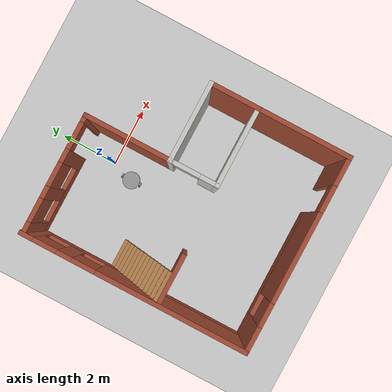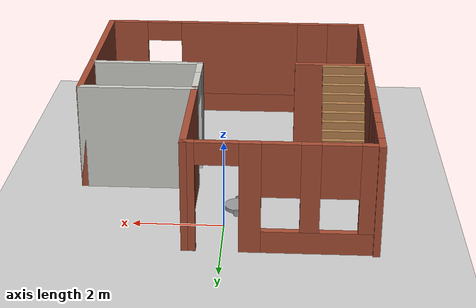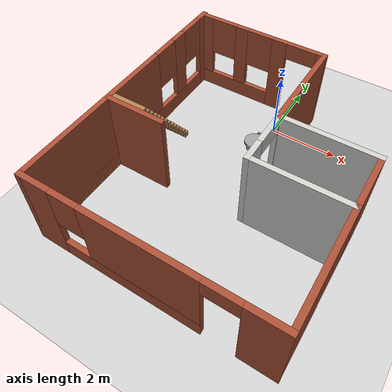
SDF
<sdf version="1.6">
 <world name="default">
  <model name="ground_plane">
   <static>1</static>
   <link name="link">
    <collision name="collision">
     <geometry><plane><normal>0 0 1</normal><size>100 100</size></plane></geometry>
     <surface><friction><ode><mu>100</mu><mu2>50</mu2></ode></friction></surface>
    </collision>
    <visual name="visual">
     <cast_shadows>0</cast_shadows>
     <geometry><plane><normal>0 0 1</normal><size>100 100</size></plane></geometry>
     <material>
      <script><uri>file://media/materials/scripts/gazebo.material</uri><name>Gazebo/Grey</name></script>
     </material>
    </visual>
   </link>
  </model>
  <model name="building">
   <pose>0.06678 -2.71531 0 0 -0 0</pose>
   <link name="Stairs_1">
    <visual name="Stairs_1_Visual_0">
     <pose>-2.71671 1.09233 0.089286 0 -0 0</pose>
     <geometry><box><size>1 0.135786 0.178571</size></box></geometry>
     <material>
      <script><uri>file://media/materials/scripts/gazebo.material</uri><name>Gazebo/Wood</name></script>
      <ambient>1 1 1 1</ambient>
     </material>
     <meta><layer>0</layer></meta>
    </visual>
    <collision name="Stairs_1_Collision_0">
     <geometry><box><size>1 0.135786 0.178571</size></box></geometry>
     <pose>-2.71671 1.09233 0.089286 0 -0 0</pose>
    </collision>
    <visual name="Stairs_1_Visual_1">
     <pose>-2.71671 0.956549 0.267857 0 -0 0</pose>
     <geometry><box><size>1 0.135786 0.178571</size></box></geometry>
     <material>
      <script><uri>file://media/materials/scripts/gazebo.material</uri><name>Gazebo/Wood</name></script>
      <ambient>1 1 1 1</ambient>
     </material>
     <meta><layer>0</layer></meta>
    </visual>
    <collision name="Stairs_1_Collision_1">
     <geometry><box><size>1 0.135786 0.178571</size></box></geometry>
     <pose>-2.71671 0.956549 0.267857 0 -0 0</pose>
    </collision>
    <visual name="Stairs_1_Visual_2">
     <pose>-2.71671 0.820763 0.446429 0 -0 0</pose>
     <geometry><box><size>1 0.135786 0.178571</size></box></geometry>
     <material>
      <script><uri>file://media/materials/scripts/gazebo.material</uri><name>Gazebo/Wood</name></script>
      <ambient>1 1 1 1</ambient>
     </material>
     <meta><layer>0</layer></meta>
    </visual>
    <collision name="Stairs_1_Collision_2">
     <geometry><box><size>1 0.135786 0.178571</size></box></geometry>
     <pose>-2.71671 0.820763 0.446429 0 -0 0</pose>
    </collision>
    <visual name="Stairs_1_Visual_3">
     <pose>-2.71671 0.684977 0.625 0 -0 0</pose>
     <geometry><box><size>1 0.135786 0.178571</size></box></geometry>
     <material>
      <script><uri>file://media/materials/scripts/gazebo.material</uri><name>Gazebo/Wood</name></script>
      <ambient>1 1 1 1</ambient>
     </material>
     <meta><layer>0</layer></meta>
    </visual>
    <collision name="Stairs_1_Collision_3">
     <geometry><box><size>1 0.135786 0.178571</size></box></geometry>
     <pose>-2.71671 0.684977 0.625 0 -0 0</pose>
    </collision>
    <visual name="Stairs_1_Visual_4">
     <pose>-2.71671 0.549191 0.803571 0 -0 0</pose>
     <geometry><box><size>1 0.135786 0.178571</size></box></geometry>
     <material>
      <script><uri>file://media/materials/scripts/gazebo.material</uri><name>Gazebo/Wood</name></script>
      <ambient>1 1 1 1</ambient>
     </material>
     <meta><layer>0</layer></meta>
    </visual>
    <collision name="Stairs_1_Collision_4">
     <geometry><box><size>1 0.135786 0.178571</size></box></geometry>
     <pose>-2.71671 0.549191 0.803571 0 -0 0</pose>
    </collision>
    <visual name="Stairs_1_Visual_5">
     <pose>-2.71671 0.413406 0.982143 0 -0 0</pose>
     <geometry><box><size>1 0.135786 0.178571</size></box></geometry>
     <material>
      <script><uri>file://media/materials/scripts/gazebo.material</uri><name>Gazebo/Wood</name></script>
      <ambient>1 1 1 1</ambient>
     </material>
     <meta><layer>0</layer></meta>
    </visual>
    <collision name="Stairs_1_Collision_5">
     <geometry><box><size>1 0.135786 0.178571</size></box></geometry>
     <pose>-2.71671 0.413406 0.982143 0 -0 0</pose>
    </collision>
    <visual name="Stairs_1_Visual_6">
     <pose>-2.71671 0.27762 1.16071 0 -0 0</pose>
     <geometry><box><size>1 0.135786 0.178571</size></box></geometry>
     <material>
      <script><uri>file://media/materials/scripts/gazebo.material</uri><name>Gazebo/Wood</name></script>
      <ambient>1 1 1 1</ambient>
     </material>
     <meta><layer>0</layer></meta>
    </visual>
    <collision name="Stairs_1_Collision_6">
     <geometry><box><size>1 0.135786 0.178571</size></box></geometry>
     <pose>-2.71671 0.27762 1.16071 0 -0 0</pose>
    </collision>
    <visual name="Stairs_1_Visual_7">
     <pose>-2.71671 0.141834 1.33929 0 -0 0</pose>
     <geometry><box><size>1 0.135786 0.178571</size></box></geometry>
     <material>
      <script><uri>file://media/materials/scripts/gazebo.material</uri><name>Gazebo/Wood</name></script>
      <ambient>1 1 1 1</ambient>
     </material>
     <meta><layer>0</layer></meta>
    </visual>
    <collision name="Stairs_1_Collision_7">
     <geometry><box><size>1 0.135786 0.178571</size></box></geometry>
     <pose>-2.71671 0.141834 1.33929 0 -0 0</pose>
    </collision>
    <visual name="Stairs_1_Visual_8">
     <pose>-2.71671 0.006049 1.51786 0 -0 0</pose>
     <geometry><box><size>1 0.135786 0.178571</size></box></geometry>
     <material>
      <script><uri>file://media/materials/scripts/gazebo.material</uri><name>Gazebo/Wood</name></script>
      <ambient>1 1 1 1</ambient>
     </material>
     <meta><layer>0</layer></meta>
    </visual>
    <collision name="Stairs_1_Collision_8">
     <geometry><box><size>1 0.135786 0.178571</size></box></geometry>
     <pose>-2.71671 0.006049 1.51786 0 -0 0</pose>
    </collision>
    <visual name="Stairs_1_Visual_9">
     <pose>-2.71671 -0.129737 1.69643 0 -0 0</pose>
     <geometry><box><size>1 0.135786 0.178571</size></box></geometry>
     <material>
      <script><uri>file://media/materials/scripts/gazebo.material</uri><name>Gazebo/Wood</name></script>
      <ambient>1 1 1 1</ambient>
     </material>
     <meta><layer>0</layer></meta>
    </visual>
    <collision name="Stairs_1_Collision_9">
     <geometry><box><size>1 0.135786 0.178571</size></box></geometry>
     <pose>-2.71671 -0.129737 1.69643 0 -0 0</pose>
    </collision>
    <visual name="Stairs_1_Visual_10">
     <pose>-2.71671 -0.265523 1.875 0 -0 0</pose>
     <geometry><box><size>1 0.135786 0.178571</size></box></geometry>
     <material>
      <script><uri>file://media/materials/scripts/gazebo.material</uri><name>Gazebo/Wood</name></script>
      <ambient>1 1 1 1</ambient>
     </material>
     <meta><layer>0</layer></meta>
    </visual>
    <collision name="Stairs_1_Collision_10">
     <geometry><box><size>1 0.135786 0.178571</size></box></geometry>
     <pose>-2.71671 -0.265523 1.875 0 -0 0</pose>
    </collision>
    <visual name="Stairs_1_Visual_11">
     <pose>-2.71671 -0.401308 2.05357 0 -0 0</pose>
     <geometry><box><size>1 0.135786 0.178571</size></box></geometry>
     <material>
      <script><uri>file://media/materials/scripts/gazebo.material</uri><name>Gazebo/Wood</name></script>
      <ambient>1 1 1 1</ambient>
     </material>
     <meta><layer>0</layer></meta>
    </visual>
    <collision name="Stairs_1_Collision_11">
     <geometry><box><size>1 0.135786 0.178571</size></box></geometry>
     <pose>-2.71671 -0.401308 2.05357 0 -0 0</pose>
    </collision>
    <visual name="Stairs_1_Visual_12">
     <pose>-2.71671 -0.537094 2.23214 0 -0 0</pose>
     <geometry><box><size>1 0.135786 0.178571</size></box></geometry>
     <material>
      <script><uri>file://media/materials/scripts/gazebo.material</uri><name>Gazebo/Wood</name></script>
      <ambient>1 1 1 1</ambient>
     </material>
     <meta><layer>0</layer></meta>
    </visual>
    <collision name="Stairs_1_Collision_12">
     <geometry><box><size>1 0.135786 0.178571</size></box></geometry>
     <pose>-2.71671 -0.537094 2.23214 0 -0 0</pose>
    </collision>
    <visual name="Stairs_1_Visual_13">
     <pose>-2.71671 -0.67288 2.41071 0 -0 0</pose>
     <geometry><box><size>1 0.135786 0.178571</size></box></geometry>
     <material>
      <script><uri>file://media/materials/scripts/gazebo.material</uri><name>Gazebo/Wood</name></script>
      <ambient>1 1 1 1</ambient>
     </material>
     <meta><layer>0</layer></meta>
    </visual>
    <collision name="Stairs_1_Collision_13">
     <geometry><box><size>1 0.135786 0.178571</size></box></geometry>
     <pose>-2.71671 -0.67288 2.41071 0 -0 0</pose>
    </collision>
   </link>
   <link name="Wall_0">
    <pose>-3.3 0 0 0 0 -1.5708</pose>
    <visual name="Wall_0_Visual_0">
     <pose>-3.64528 0 1.25 0 -0 0</pose>
     <geometry><box><size>0.459429 0.15 2.5</size></box></geometry>
     <material>
      <script><uri>file://media/materials/scripts/gazebo.material</uri><name>Gazebo/Bricks</name></script>
      <ambient>1 1 1 1</ambient>
     </material>
     <meta><layer>0</layer></meta>
    </visual>
    <collision name="Wall_0_Collision_0">
     <geometry><box><size>0.459429 0.15 2.5</size></box></geometry>
     <pose>-3.64528 0 1.25 0 -0 0</pose>
    </collision>
    <visual name="Wall_0_Visual_1">
     <pose>0.229715 0 0.25 0 -0 0</pose>
     <geometry><box><size>7.29057 0.15 0.5</size></box></geometry>
     <material>
      <script><uri>file://media/materials/scripts/gazebo.material</uri><name>Gazebo/Bricks</name></script>
      <ambient>1 1 1 1</ambient>
     </material>
     <meta><layer>0</layer></meta>
    </visual>
    <collision name="Wall_0_Collision_1">
     <geometry><box><size>7.29057 0.15 0.5</size></box></geometry>
     <pose>0.229715 0 0.25 0 -0 0</pose>
    </collision>
    <visual name="Wall_0_Visual_2">
     <pose>-2.36188 0 1.5 0 -0 0</pose>
     <geometry><box><size>0.507382 0.15 2</size></box></geometry>
     <material>
      <script><uri>file://media/materials/scripts/gazebo.material</uri><name>Gazebo/Bricks</name></script>
      <ambient>1 1 1 1</ambient>
     </material>
     <meta><layer>0</layer></meta>
    </visual>
    <collision name="Wall_0_Collision_2">
     <geometry><box><size>0.507382 0.15 2</size></box></geometry>
     <pose>-2.36188 0 1.5 0 -0 0</pose>
    </collision>
    <visual name="Wall_0_Visual_3">
     <pose>1.28341 0 1.5 0 -0 0</pose>
     <geometry><box><size>5.18319 0.15 2</size></box></geometry>
     <material>
      <script><uri>file://media/materials/scripts/gazebo.material</uri><name>Gazebo/Bricks</name></script>
      <ambient>1 1 1 1</ambient>
     </material>
     <meta><layer>0</layer></meta>
    </visual>
    <collision name="Wall_0_Collision_3">
     <geometry><box><size>5.18319 0.15 2</size></box></geometry>
     <pose>1.28341 0 1.5 0 -0 0</pose>
    </collision>
    <visual name="Wall_0_Visual_4">
     <pose>-3.01557 0 1.9 0 -0 0</pose>
     <geometry><box><size>0.8 0.15 1.2</size></box></geometry>
     <material>
      <script><uri>file://media/materials/scripts/gazebo.material</uri><name>Gazebo/Bricks</name></script>
      <ambient>1 1 1 1</ambient>
     </material>
     <meta><layer>0</layer></meta>
    </visual>
    <collision name="Wall_0_Collision_4">
     <geometry><box><size>0.8 0.15 1.2</size></box></geometry>
     <pose>-3.01557 0 1.9 0 -0 0</pose>
    </collision>
    <visual name="Wall_0_Visual_5">
     <pose>-1.70819 0 1.9 0 -0 0</pose>
     <geometry><box><size>0.8 0.15 1.2</size></box></geometry>
     <material>
      <script><uri>file://media/materials/scripts/gazebo.material</uri><name>Gazebo/Bricks</name></script>
      <ambient>1 1 1 1</ambient>
     </material>
     <meta><layer>0</layer></meta>
    </visual>
    <collision name="Wall_0_Collision_5">
     <geometry><box><size>0.8 0.15 1.2</size></box></geometry>
     <pose>-1.70819 0 1.9 0 -0 0</pose>
    </collision>
   </link>
   <link name="Wall_1">
    <pose>0 -3.8 0 0 -0 0</pose>
    <visual name="Wall_1_Visual_0">
     <pose>-2.90392 0 1.25 0 -0 0</pose>
     <geometry><box><size>0.942155 0.15 2.5</size></box></geometry>
     <material>
      <script><uri>file://media/materials/scripts/gazebo.material</uri><name>Gazebo/Bricks</name></script>
      <ambient>1 1 1 1</ambient>
     </material>
     <meta><layer>0</layer></meta>
    </visual>
    <collision name="Wall_1_Collision_0">
     <geometry><box><size>0.942155 0.15 2.5</size></box></geometry>
     <pose>-2.90392 0 1.25 0 -0 0</pose>
    </collision>
    <visual name="Wall_1_Visual_1">
     <pose>2.85715 0 1.25 0 -0 0</pose>
     <geometry><box><size>1.0357 0.15 2.5</size></box></geometry>
     <material>
      <script><uri>file://media/materials/scripts/gazebo.material</uri><name>Gazebo/Bricks</name></script>
      <ambient>1 1 1 1</ambient>
     </material>
     <meta><layer>0</layer></meta>
    </visual>
    <collision name="Wall_1_Collision_1">
     <geometry><box><size>1.0357 0.15 2.5</size></box></geometry>
     <pose>2.85715 0 1.25 0 -0 0</pose>
    </collision>
    <visual name="Wall_1_Visual_2">
     <pose>-0.496772 0 0.25 0 -0 0</pose>
     <geometry><box><size>3.87215 0.15 0.5</size></box></geometry>
     <material>
      <script><uri>file://media/materials/scripts/gazebo.material</uri><name>Gazebo/Bricks</name></script>
      <ambient>1 1 1 1</ambient>
     </material>
     <meta><layer>0</layer></meta>
    </visual>
    <collision name="Wall_1_Collision_2">
     <geometry><box><size>3.87215 0.15 0.5</size></box></geometry>
     <pose>-0.496772 0 0.25 0 -0 0</pose>
    </collision>
    <visual name="Wall_1_Visual_3">
     <pose>-0.096772 0 1.5 0 -0 0</pose>
     <geometry><box><size>3.07215 0.15 2</size></box></geometry>
     <material>
      <script><uri>file://media/materials/scripts/gazebo.material</uri><name>Gazebo/Bricks</name></script>
      <ambient>1 1 1 1</ambient>
     </material>
     <meta><layer>0</layer></meta>
    </visual>
    <collision name="Wall_1_Collision_3">
     <geometry><box><size>3.07215 0.15 2</size></box></geometry>
     <pose>-0.096772 0 1.5 0 -0 0</pose>
    </collision>
    <visual name="Wall_1_Visual_4">
     <pose>-2.03285 0 1.9 0 -0 0</pose>
     <geometry><box><size>0.8 0.15 1.2</size></box></geometry>
     <material>
      <script><uri>file://media/materials/scripts/gazebo.material</uri><name>Gazebo/Bricks</name></script>
      <ambient>1 1 1 1</ambient>
     </material>
     <meta><layer>0</layer></meta>
    </visual>
    <collision name="Wall_1_Collision_4">
     <geometry><box><size>0.8 0.15 1.2</size></box></geometry>
     <pose>-2.03285 0 1.9 0 -0 0</pose>
    </collision>
    <visual name="Wall_1_Visual_5">
     <pose>1.8893 0 2.25 0 -0 0</pose>
     <geometry><box><size>0.9 0.15 0.5</size></box></geometry>
     <material>
      <script><uri>file://media/materials/scripts/gazebo.material</uri><name>Gazebo/Bricks</name></script>
      <ambient>1 1 1 1</ambient>
     </material>
     <meta><layer>0</layer></meta>
    </visual>
    <collision name="Wall_1_Collision_5">
     <geometry><box><size>0.9 0.15 0.5</size></box></geometry>
     <pose>1.8893 0 2.25 0 -0 0</pose>
    </collision>
   </link>
   <link name="Wall_10">
    <collision name="Wall_10_Collision">
     <geometry><box><size>2.75 0.15 2.5</size></box></geometry>
     <pose>0 0 1.25 0 -0 0</pose>
    </collision>
    <visual name="Wall_10_Visual">
     <pose>0 0 1.25 0 -0 0</pose>
     <geometry><box><size>2.75 0.15 2.5</size></box></geometry>
     <material>
      <script><uri>file://media/materials/scripts/gazebo.material</uri><name>Gazebo/CeilingTiled</name></script>
      <ambient>1 1 1 1</ambient>
     </material>
     <meta><layer>0</layer></meta>
    </visual>
    <pose>2 0.9 0 0 -0 0</pose>
   </link>
   <link name="Wall_11">
    <collision name="Wall_11_Collision">
     <geometry><box><size>1.75 0.15 2.5</size></box></geometry>
     <pose>0 0 1.25 0 -0 0</pose>
    </collision>
    <visual name="Wall_11_Visual">
     <pose>0 0 1.25 0 -0 0</pose>
     <geometry><box><size>1.75 0.15 2.5</size></box></geometry>
     <material>
      <script><uri>file://media/materials/scripts/gazebo.material</uri><name>Gazebo/Bricks</name></script>
      <ambient>1 1 1 1</ambient>
     </material>
     <meta><layer>0</layer></meta>
    </visual>
    <pose>3.3 0.1 0 0 0 -1.5708</pose>
   </link>
   <link name="Wall_2">
    <collision name="Wall_2_Collision">
     <geometry><box><size>3.25 0.15 2.5</size></box></geometry>
     <pose>0 0 1.25 0 -0 0</pose>
    </collision>
    <visual name="Wall_2_Visual">
     <pose>0 0 1.25 0 -0 0</pose>
     <geometry><box><size>3.25 0.15 2.5</size></box></geometry>
     <material>
      <script><uri>file://media/materials/scripts/gazebo.material</uri><name>Gazebo/Bricks</name></script>
      <ambient>1 1 1 1</ambient>
     </material>
     <meta><layer>0</layer></meta>
    </visual>
    <pose>3.3 -2.25 0 0 -0 1.5708</pose>
   </link>
   <link name="Wall_3">
    <collision name="Wall_3_Collision">
     <geometry><box><size>2.75 0.15 2.5</size></box></geometry>
     <pose>0 0 1.25 0 -0 0</pose>
    </collision>
    <visual name="Wall_3_Visual">
     <pose>0 0 1.25 0 -0 0</pose>
     <geometry><box><size>2.75 0.15 2.5</size></box></geometry>
     <material>
      <script><uri>file://media/materials/scripts/gazebo.material</uri><name>Gazebo/CeilingTiled</name></script>
      <ambient>1 1 1 1</ambient>
     </material>
     <meta><layer>0</layer></meta>
    </visual>
    <pose>2 -0.7 0 0 -0 3.14159</pose>
   </link>
   <link name="Wall_4">
    <pose>0.7 0.1 0 0 -0 1.5708</pose>
    <visual name="Wall_4_Visual_0">
     <pose>-0.542267 0 1.25 0 -0 0</pose>
     <geometry><box><size>0.665466 0.15 2.5</size></box></geometry>
     <material>
      <script><uri>file://media/materials/scripts/gazebo.material</uri><name>Gazebo/CeilingTiled</name></script>
      <ambient>1 1 1 1</ambient>
     </material>
     <meta><layer>0</layer></meta>
    </visual>
    <collision name="Wall_4_Collision_0">
     <geometry><box><size>0.665466 0.15 2.5</size></box></geometry>
     <pose>-0.542267 0 1.25 0 -0 0</pose>
    </collision>
    <visual name="Wall_4_Visual_1">
     <pose>0.782733 0 1.25 0 -0 0</pose>
     <geometry><box><size>0.184534 0.15 2.5</size></box></geometry>
     <material>
      <script><uri>file://media/materials/scripts/gazebo.material</uri><name>Gazebo/CeilingTiled</name></script>
      <ambient>1 1 1 1</ambient>
     </material>
     <meta><layer>0</layer></meta>
    </visual>
    <collision name="Wall_4_Collision_1">
     <geometry><box><size>0.184534 0.15 2.5</size></box></geometry>
     <pose>0.782733 0 1.25 0 -0 0</pose>
    </collision>
    <visual name="Wall_4_Visual_2">
     <pose>0.240466 0 2.25 0 -0 0</pose>
     <geometry><box><size>0.9 0.15 0.5</size></box></geometry>
     <material>
      <script><uri>file://media/materials/scripts/gazebo.material</uri><name>Gazebo/CeilingTiled</name></script>
      <ambient>1 1 1 1</ambient>
     </material>
     <meta><layer>0</layer></meta>
    </visual>
    <collision name="Wall_4_Collision_2">
     <geometry><box><size>0.9 0.15 0.5</size></box></geometry>
     <pose>0.240466 0 2.25 0 -0 0</pose>
    </collision>
   </link>
   <link name="Wall_5">
    <collision name="Wall_5_Collision">
     <geometry><box><size>3 0.15 2.5</size></box></geometry>
     <pose>0 0 1.25 0 -0 0</pose>
    </collision>
    <visual name="Wall_5_Visual">
     <pose>0 0 1.25 0 -0 0</pose>
     <geometry><box><size>3 0.15 2.5</size></box></geometry>
     <material>
      <script><uri>file://media/materials/scripts/gazebo.material</uri><name>Gazebo/Bricks</name></script>
      <ambient>1 1 1 1</ambient>
     </material>
     <meta><layer>0</layer></meta>
    </visual>
    <pose>0.7 2.325 0 0 -0 1.5708</pose>
   </link>
   <link name="Wall_6">
    <pose>-1.225 3.75 0 0 -0 3.14159</pose>
    <visual name="Wall_6_Visual_0">
     <pose>-1.84687 0 1.25 0 -0 0</pose>
     <geometry><box><size>0.306261 0.15 2.5</size></box></geometry>
     <material>
      <script><uri>file://media/materials/scripts/gazebo.material</uri><name>Gazebo/Bricks</name></script>
      <ambient>1 1 1 1</ambient>
     </material>
     <meta><layer>0</layer></meta>
    </visual>
    <collision name="Wall_6_Collision_0">
     <geometry><box><size>0.306261 0.15 2.5</size></box></geometry>
     <pose>-1.84687 0 1.25 0 -0 0</pose>
    </collision>
    <visual name="Wall_6_Visual_1">
     <pose>-0.565048 0 1.25 0 -0 0</pose>
     <geometry><box><size>0.457382 0.15 2.5</size></box></geometry>
     <material>
      <script><uri>file://media/materials/scripts/gazebo.material</uri><name>Gazebo/Bricks</name></script>
      <ambient>1 1 1 1</ambient>
     </material>
     <meta><layer>0</layer></meta>
    </visual>
    <collision name="Wall_6_Collision_1">
     <geometry><box><size>0.457382 0.15 2.5</size></box></geometry>
     <pose>-0.565048 0 1.25 0 -0 0</pose>
    </collision>
    <visual name="Wall_6_Visual_2">
     <pose>0.831821 0 0.25 0 -0 0</pose>
     <geometry><box><size>2.33636 0.15 0.5</size></box></geometry>
     <material>
      <script><uri>file://media/materials/scripts/gazebo.material</uri><name>Gazebo/Bricks</name></script>
      <ambient>1 1 1 1</ambient>
     </material>
     <meta><layer>0</layer></meta>
    </visual>
    <collision name="Wall_6_Collision_2">
     <geometry><box><size>2.33636 0.15 0.5</size></box></geometry>
     <pose>0.831821 0 0.25 0 -0 0</pose>
    </collision>
    <visual name="Wall_6_Visual_3">
     <pose>0.66705 0 1.5 0 -0 0</pose>
     <geometry><box><size>0.406814 0.15 2</size></box></geometry>
     <material>
      <script><uri>file://media/materials/scripts/gazebo.material</uri><name>Gazebo/Bricks</name></script>
      <ambient>1 1 1 1</ambient>
     </material>
     <meta><layer>0</layer></meta>
    </visual>
    <collision name="Wall_6_Collision_3">
     <geometry><box><size>0.406814 0.15 2</size></box></geometry>
     <pose>0.66705 0 1.5 0 -0 0</pose>
    </collision>
    <visual name="Wall_6_Visual_4">
     <pose>1.83523 0 1.5 0 -0 0</pose>
     <geometry><box><size>0.329543 0.15 2</size></box></geometry>
     <material>
      <script><uri>file://media/materials/scripts/gazebo.material</uri><name>Gazebo/Bricks</name></script>
      <ambient>1 1 1 1</ambient>
     </material>
     <meta><layer>0</layer></meta>
    </visual>
    <collision name="Wall_6_Collision_4">
     <geometry><box><size>0.329543 0.15 2</size></box></geometry>
     <pose>1.83523 0 1.5 0 -0 0</pose>
    </collision>
    <visual name="Wall_6_Visual_5">
     <pose>0.063643 0 1.9 0 -0 0</pose>
     <geometry><box><size>0.8 0.15 1.2</size></box></geometry>
     <material>
      <script><uri>file://media/materials/scripts/gazebo.material</uri><name>Gazebo/Bricks</name></script>
      <ambient>1 1 1 1</ambient>
     </material>
     <meta><layer>0</layer></meta>
    </visual>
    <collision name="Wall_6_Collision_5">
     <geometry><box><size>0.8 0.15 1.2</size></box></geometry>
     <pose>0.063643 0 1.9 0 -0 0</pose>
    </collision>
    <visual name="Wall_6_Visual_6">
     <pose>1.27046 0 1.9 0 -0 0</pose>
     <geometry><box><size>0.8 0.15 1.2</size></box></geometry>
     <material>
      <script><uri>file://media/materials/scripts/gazebo.material</uri><name>Gazebo/Bricks</name></script>
      <ambient>1 1 1 1</ambient>
     </material>
     <meta><layer>0</layer></meta>
    </visual>
    <collision name="Wall_6_Collision_6">
     <geometry><box><size>0.8 0.15 1.2</size></box></geometry>
     <pose>1.27046 0 1.9 0 -0 0</pose>
    </collision>
    <visual name="Wall_6_Visual_7">
     <pose>-1.24374 0 2.25 0 -0 0</pose>
     <geometry><box><size>0.9 0.15 0.5</size></box></geometry>
     <material>
      <script><uri>file://media/materials/scripts/gazebo.material</uri><name>Gazebo/Bricks</name></script>
      <ambient>1 1 1 1</ambient>
     </material>
     <meta><layer>0</layer></meta>
    </visual>
    <collision name="Wall_6_Collision_7">
     <geometry><box><size>0.9 0.15 0.5</size></box></geometry>
     <pose>-1.24374 0 2.25 0 -0 0</pose>
    </collision>
   </link>
   <link name="Wall_8">
    <collision name="Wall_8_Collision">
     <geometry><box><size>1.75 0.15 2.5</size></box></geometry>
     <pose>0 0 1.25 0 -0 0</pose>
    </collision>
    <visual name="Wall_8_Visual">
     <pose>0 0 1.25 0 -0 0</pose>
     <geometry><box><size>1.75 0.15 2.5</size></box></geometry>
     <material>
      <script><uri>file://media/materials/scripts/gazebo.material</uri><name>Gazebo/Bricks</name></script>
      <ambient>1 1 1 1</ambient>
     </material>
     <meta><layer>0</layer></meta>
    </visual>
    <pose>-2.43966 -0.806008 0 0 -0 0</pose>
   </link>
   <static>1</static>
  </model>
  <model name="myrobot_0">
   <link name="link_1">
    <pose>-0.000148 0.002031 0.023 0 -0 0</pose>
    <inertial>
     <mass>1</mass>
     <inertia><ixx>0.145833</ixx><ixy>0</ixy><ixz>0</ixz><iyy>0.145833</iyy><iyz>0</iyz><izz>0.125</izz></inertia>
    </inertial>
    <visual name="visual">
     <geometry><cylinder><radius>0.3</radius><length>0.08</length></cylinder></geometry>
     <material>
      <lighting>1</lighting>
      <script><uri>file://media/materials/scripts/gazebo.material</uri><name>Gazebo/Grey</name></script>
      <shader type="pixel"><normal_map>__default__</normal_map></shader>
      <ambient>0.3 0.3 0.3 1</ambient>
      <diffuse>0.7 0.7 0.7 1</diffuse>
      <specular>0.01 0.01 0.01 1</specular>
      <emissive>0 0 0 1</emissive>
     </material>
    </visual>
    <collision name="collision">
     <geometry><cylinder><radius>0.3</radius><length>0.08</length></cylinder></geometry>
     <surface>
      <friction>
       <ode><mu>1</mu><mu2>1</mu2><fdir1>0 0 0</fdir1><slip1>0</slip1><slip2>0</slip2></ode>
       <torsional>
        <coefficient>1</coefficient>
        <patch_radius>0</patch_radius>
        <surface_radius>0</surface_radius>
        <use_patch_radius>1</use_patch_radius>
        <ode><slip>0</slip></ode>
       </torsional>
      </friction>
      <bounce><restitution_coefficient>0</restitution_coefficient><threshold>1e+06</threshold></bounce>
      <contact>
       <collide_without_contact>0</collide_without_contact>
       <collide_without_contact_bitmask>1</collide_without_contact_bitmask>
       <collide_bitmask>1</collide_bitmask>
       <ode>
        <soft_cfm>0</soft_cfm>
        <soft_erp>0.2</soft_erp>
        <kp>1e+13</kp>
        <kd>1</kd>
        <max_vel>0.01</max_vel>
        <min_depth>0</min_depth>
       </ode>
       <bullet>
        <split_impulse>1</split_impulse>
        <split_impulse_penetration_threshold>-0.01</split_impulse_penetration_threshold>
        <soft_cfm>0</soft_cfm>
        <soft_erp>0.2</soft_erp>
        <kp>1e+13</kp>
        <kd>1</kd>
       </bullet>
      </contact>
     </surface>
    </collision>
   </link>
   <link name="link_2">
    <pose>0.00372 -0.333364 0.023 1.5705 -0 0</pose>
    <inertial>
     <mass>1</mass>
     <inertia><ixx>0.145833</ixx><ixy>0</ixy><ixz>0</ixz><iyy>0.145833</iyy><iyz>0</iyz><izz>0.125</izz></inertia>
    </inertial>
    <visual name="visual">
     <geometry><cylinder><radius>0.08</radius><length>0.05</length></cylinder></geometry>
     <material>
      <lighting>1</lighting>
      <script><uri>file://media/materials/scripts/gazebo.material</uri><name>Gazebo/Grey</name></script>
      <shader type="pixel"><normal_map>__default__</normal_map></shader>
      <ambient>0.3 0.3 0.3 1</ambient>
      <diffuse>0.7 0.7 0.7 1</diffuse>
      <specular>0.01 0.01 0.01 1</specular>
      <emissive>0 0 0 1</emissive>
     </material>
    </visual>
    <collision name="collision">
     <geometry><cylinder><radius>0.08</radius><length>0.05</length></cylinder></geometry>
     <surface>
      <friction>
       <ode><mu>1</mu><mu2>1</mu2><fdir1>0 0 0</fdir1><slip1>0</slip1><slip2>0</slip2></ode>
       <torsional>
        <coefficient>1</coefficient>
        <patch_radius>0</patch_radius>
        <surface_radius>0</surface_radius>
        <use_patch_radius>1</use_patch_radius>
        <ode><slip>0</slip></ode>
       </torsional>
      </friction>
      <bounce><restitution_coefficient>0</restitution_coefficient><threshold>1e+06</threshold></bounce>
      <contact>
       <collide_without_contact>0</collide_without_contact>
       <collide_without_contact_bitmask>1</collide_without_contact_bitmask>
       <collide_bitmask>1</collide_bitmask>
       <ode>
        <soft_cfm>0</soft_cfm>
        <soft_erp>0.2</soft_erp>
        <kp>1e+13</kp>
        <kd>1</kd>
        <max_vel>0.01</max_vel>
        <min_depth>0</min_depth>
       </ode>
       <bullet>
        <split_impulse>1</split_impulse>
        <split_impulse_penetration_threshold>-0.01</split_impulse_penetration_threshold>
        <soft_cfm>0</soft_cfm>
        <soft_erp>0.2</soft_erp>
        <kp>1e+13</kp>
        <kd>1</kd>
       </bullet>
      </contact>
     </surface>
    </collision>
   </link>
   <link name="link_2_clone">
    <pose>-0.003274 0.336298 0.023 1.5705 -0 0</pose>
    <inertial>
     <mass>1</mass>
     <inertia><ixx>0.145833</ixx><ixy>0</ixy><ixz>0</ixz><iyy>0.145833</iyy><iyz>0</iyz><izz>0.125</izz></inertia>
    </inertial>
    <visual name="visual">
     <geometry><cylinder><radius>0.08</radius><length>0.05</length></cylinder></geometry>
     <material>
      <lighting>1</lighting>
      <script><uri>file://media/materials/scripts/gazebo.material</uri><name>Gazebo/Grey</name></script>
      <shader type="pixel"><normal_map>__default__</normal_map></shader>
      <ambient>0.3 0.3 0.3 1</ambient>
      <diffuse>0.7 0.7 0.7 1</diffuse>
      <specular>0.01 0.01 0.01 1</specular>
      <emissive>0 0 0 1</emissive>
     </material>
    </visual>
    <collision name="collision">
     <geometry><cylinder><radius>0.08</radius><length>0.05</length></cylinder></geometry>
     <surface>
      <friction>
       <ode><mu>1</mu><mu2>1</mu2><fdir1>0 0 0</fdir1><slip1>0</slip1><slip2>0</slip2></ode>
       <torsional>
        <coefficient>1</coefficient>
        <patch_radius>0</patch_radius>
        <surface_radius>0</surface_radius>
        <use_patch_radius>1</use_patch_radius>
        <ode><slip>0</slip></ode>
       </torsional>
      </friction>
      <bounce><restitution_coefficient>0</restitution_coefficient><threshold>1e+06</threshold></bounce>
      <contact>
       <collide_without_contact>0</collide_without_contact>
       <collide_without_contact_bitmask>1</collide_without_contact_bitmask>
       <collide_bitmask>1</collide_bitmask>
       <ode>
        <soft_cfm>0</soft_cfm>
        <soft_erp>0.2</soft_erp>
        <kp>1e+13</kp>
        <kd>1</kd>
        <max_vel>0.01</max_vel>
        <min_depth>0</min_depth>
       </ode>
       <bullet>
        <split_impulse>1</split_impulse>
        <split_impulse_penetration_threshold>-0.01</split_impulse_penetration_threshold>
        <soft_cfm>0</soft_cfm>
        <soft_erp>0.2</soft_erp>
        <kp>1e+13</kp>
        <kd>1</kd>
       </bullet>
      </contact>
     </surface>
    </collision>
   </link>
   <link name="link_3">
    <pose>0.279852 -0.006996 -0.037 0 -0 0</pose>
    <inertial>
     <mass>1</mass>
     <inertia><ixx>0.1</ixx><ixy>0</ixy><ixz>0</ixz><iyy>0.1</iyy><iyz>0</iyz><izz>0.1</izz></inertia>
    </inertial>
    <visual name="visual">
     <geometry><sphere><radius>0.02</radius></sphere></geometry>
     <material>
      <lighting>1</lighting>
      <script><uri>file://media/materials/scripts/gazebo.material</uri><name>Gazebo/Grey</name></script>
      <shader type="pixel"><normal_map>__default__</normal_map></shader>
      <ambient>0.3 0.3 0.3 1</ambient>
      <diffuse>0.7 0.7 0.7 1</diffuse>
      <specular>0.01 0.01 0.01 1</specular>
      <emissive>0 0 0 1</emissive>
     </material>
    </visual>
    <collision name="collision">
     <geometry><sphere><radius>0.02</radius></sphere></geometry>
     <surface>
      <friction>
       <ode><mu>1</mu><mu2>1</mu2><fdir1>0 0 0</fdir1><slip1>0</slip1><slip2>0</slip2></ode>
       <torsional>
        <coefficient>1</coefficient>
        <patch_radius>0</patch_radius>
        <surface_radius>0</surface_radius>
        <use_patch_radius>1</use_patch_radius>
        <ode><slip>0</slip></ode>
       </torsional>
      </friction>
      <bounce><restitution_coefficient>0</restitution_coefficient><threshold>1e+06</threshold></bounce>
      <contact>
       <collide_without_contact>0</collide_without_contact>
       <collide_without_contact_bitmask>1</collide_without_contact_bitmask>
       <collide_bitmask>1</collide_bitmask>
       <ode>
        <soft_cfm>0</soft_cfm>
        <soft_erp>0.2</soft_erp>
        <kp>1e+13</kp>
        <kd>1</kd>
        <max_vel>0.01</max_vel>
        <min_depth>0</min_depth>
       </ode>
       <bullet>
        <split_impulse>1</split_impulse>
        <split_impulse_penetration_threshold>-0.01</split_impulse_penetration_threshold>
        <soft_cfm>0</soft_cfm>
        <soft_erp>0.2</soft_erp>
        <kp>1e+13</kp>
        <kd>1</kd>
       </bullet>
      </contact>
     </surface>
    </collision>
   </link>
   <link name="link_3_clone">
    <pose>-0.280148 0.002031 -0.032 0 -0 0</pose>
    <inertial>
     <mass>1</mass>
     <inertia><ixx>0.1</ixx><ixy>0</ixy><ixz>0</ixz><iyy>0.1</iyy><iyz>0</iyz><izz>0.1</izz></inertia>
     <pose>-0.2 0 0.02 0 -0 0</pose>
    </inertial>
    <visual name="visual">
     <geometry><sphere><radius>0.02</radius></sphere></geometry>
     <material>
      <lighting>1</lighting>
      <script><uri>file://media/materials/scripts/gazebo.material</uri><name>Gazebo/Grey</name></script>
      <shader type="pixel"><normal_map>__default__</normal_map></shader>
      <ambient>0.3 0.3 0.3 1</ambient>
      <diffuse>0.7 0.7 0.7 1</diffuse>
      <specular>0.01 0.01 0.01 1</specular>
      <emissive>0 0 0 1</emissive>
     </material>
    </visual>
    <collision name="collision">
     <geometry><sphere><radius>0.02</radius></sphere></geometry>
     <surface>
      <friction>
       <ode><mu>1</mu><mu2>1</mu2><fdir1>0 0 0</fdir1><slip1>0</slip1><slip2>0</slip2></ode>
       <torsional>
        <coefficient>1</coefficient>
        <patch_radius>0</patch_radius>
        <surface_radius>0</surface_radius>
        <use_patch_radius>1</use_patch_radius>
        <ode><slip>0</slip></ode>
       </torsional>
      </friction>
      <bounce><restitution_coefficient>0</restitution_coefficient><threshold>1e+06</threshold></bounce>
      <contact>
       <collide_without_contact>0</collide_without_contact>
       <collide_without_contact_bitmask>1</collide_without_contact_bitmask>
       <collide_bitmask>1</collide_bitmask>
       <ode>
        <soft_cfm>0</soft_cfm>
        <soft_erp>0.2</soft_erp>
        <kp>1e+13</kp>
        <kd>1</kd>
        <max_vel>0.01</max_vel>
        <min_depth>0</min_depth>
       </ode>
       <bullet>
        <split_impulse>1</split_impulse>
        <split_impulse_penetration_threshold>-0.01</split_impulse_penetration_threshold>
        <soft_cfm>0</soft_cfm>
        <soft_erp>0.2</soft_erp>
        <kp>1e+13</kp>
        <kd>1</kd>
       </bullet>
      </contact>
     </surface>
    </collision>
   </link>
   <joint name="link_1_JOINT_1" type="revolute">
    <parent>link_1</parent>
    <child>link_2_clone</child>
    <axis>
     <xyz>0 0 1</xyz>
     <use_parent_model_frame>0</use_parent_model_frame>
     <limit>
      <lower>-1.79769e+308</lower>
      <upper>1.79769e+308</upper>
      <effort>-1</effort>
      <velocity>-1</velocity>
     </limit>
     <dynamics>
      <spring_reference>0</spring_reference>
      <spring_stiffness>0</spring_stiffness>
      <damping>0</damping>
     </dynamics>
    </axis>
    <physics>
     <ode><limit><cfm>0</cfm><erp>0.2</erp></limit><suspension><cfm>0</cfm><erp>0.2</erp></suspension></ode>
    </physics>
   </joint>
   <joint name="link_1_JOINT_3" type="revolute">
    <parent>link_1</parent>
    <child>link_2</child>
    <pose>0 0 0 -0.01 0 0</pose>
    <axis>
     <xyz>0 0 1</xyz>
     <use_parent_model_frame>0</use_parent_model_frame>
     <limit>
      <lower>-1.79769e+308</lower>
      <upper>1.79769e+308</upper>
      <effort>-1</effort>
      <velocity>-1</velocity>
     </limit>
     <dynamics>
      <spring_reference>0</spring_reference>
      <spring_stiffness>0</spring_stiffness>
      <damping>0</damping>
     </dynamics>
    </axis>
    <physics>
     <ode><limit><cfm>0</cfm><erp>0.2</erp></limit><suspension><cfm>0</cfm><erp>0.2</erp></suspension></ode>
    </physics>
   </joint>
   <joint name="link_1_JOINT_4" type="ball">
    <parent>link_1</parent>
    <child>link_3_clone</child>
    <physics>
     <ode><limit><cfm>0</cfm><erp>0.2</erp></limit><suspension><cfm>0</cfm><erp>0.2</erp></suspension></ode>
    </physics>
   </joint>
   <joint name="link_1_JOINT_5" type="revolute">
    <parent>link_1</parent>
    <child>link_3_LINK_FRAME_VISUAL___X_AXIS</child>
    <axis>
     <xyz>1 0 0</xyz>
     <use_parent_model_frame>0</use_parent_model_frame>
     <limit>
      <lower>-1.79769e+308</lower>
      <upper>1.79769e+308</upper>
      <effort>-1</effort>
      <velocity>-1</velocity>
     </limit>
     <dynamics>
      <spring_reference>0</spring_reference>
      <spring_stiffness>0</spring_stiffness>
      <damping>0</damping>
     </dynamics>
    </axis>
    <physics>
     <ode><limit><cfm>0</cfm><erp>0.2</erp></limit><suspension><cfm>0</cfm><erp>0.2</erp></suspension></ode>
    </physics>
   </joint>
   <static>0</static>
   <pose>-0.265488 -0.779276 0.057073 -7e-06 -0.018126 -0.030479</pose>
  </model>
 </world>
</sdf>
